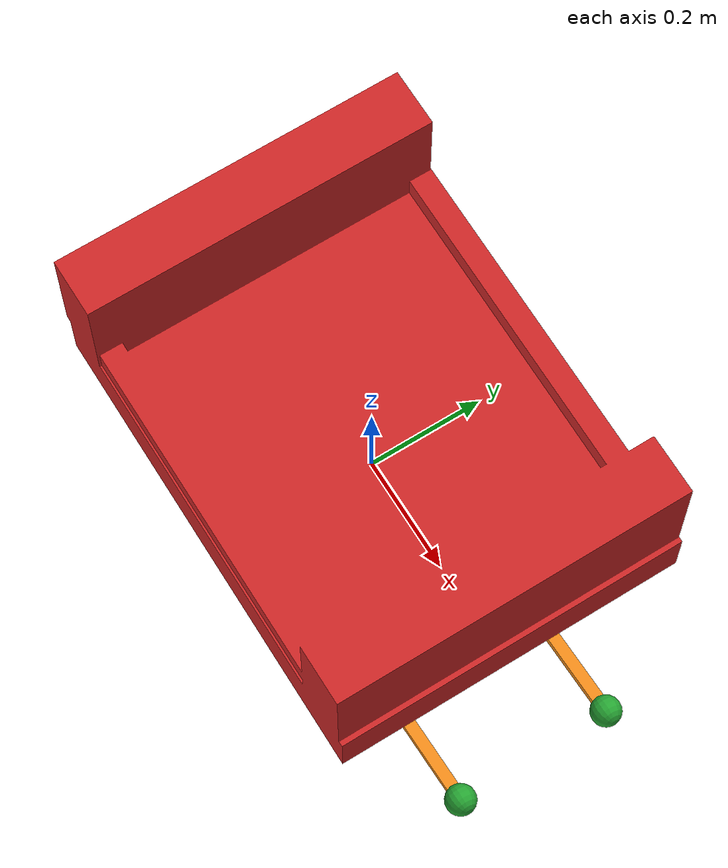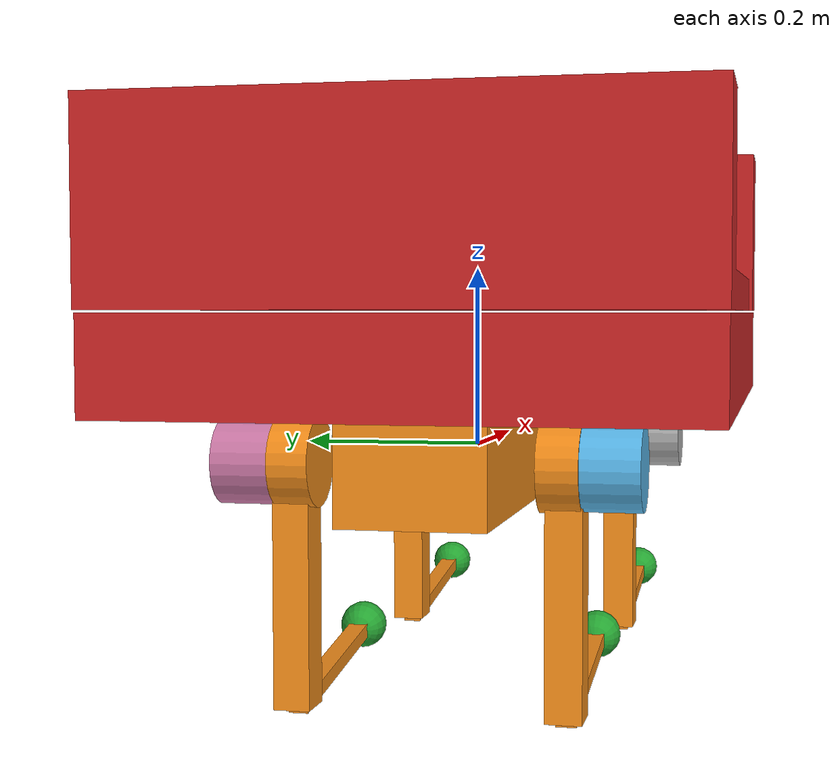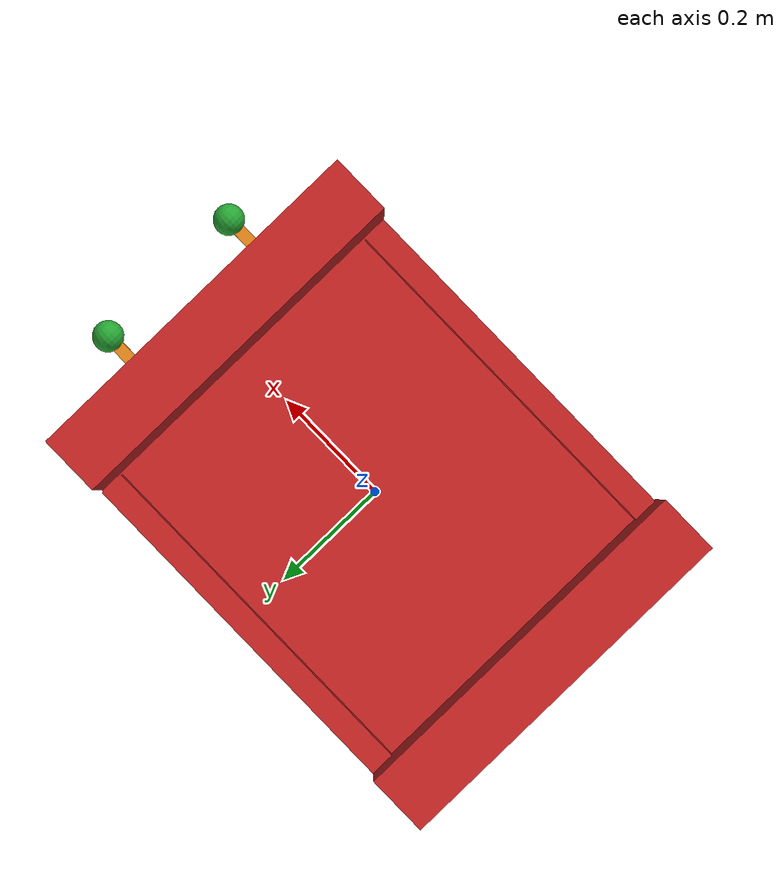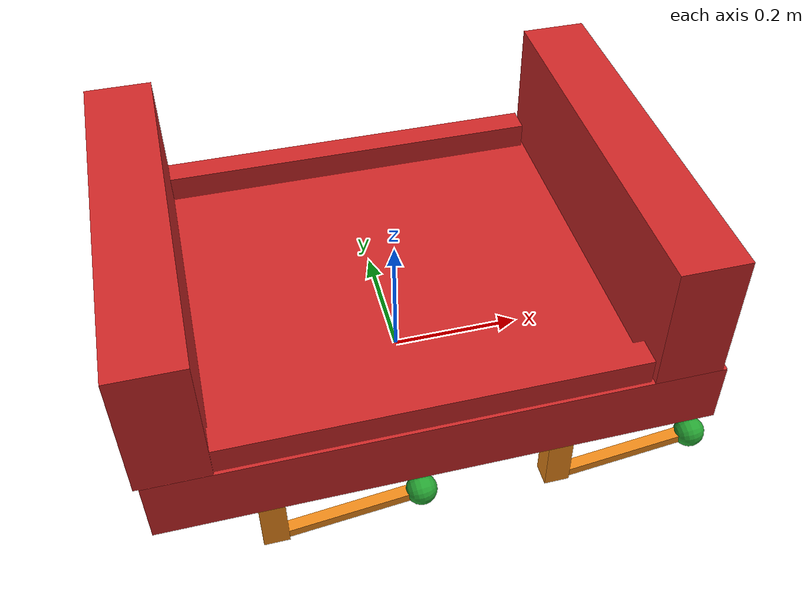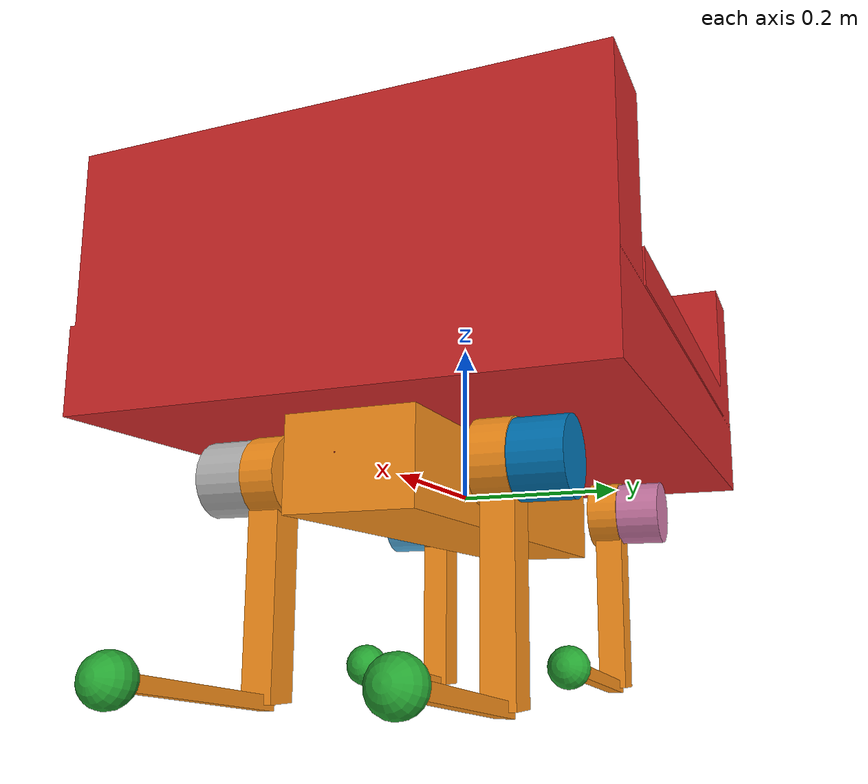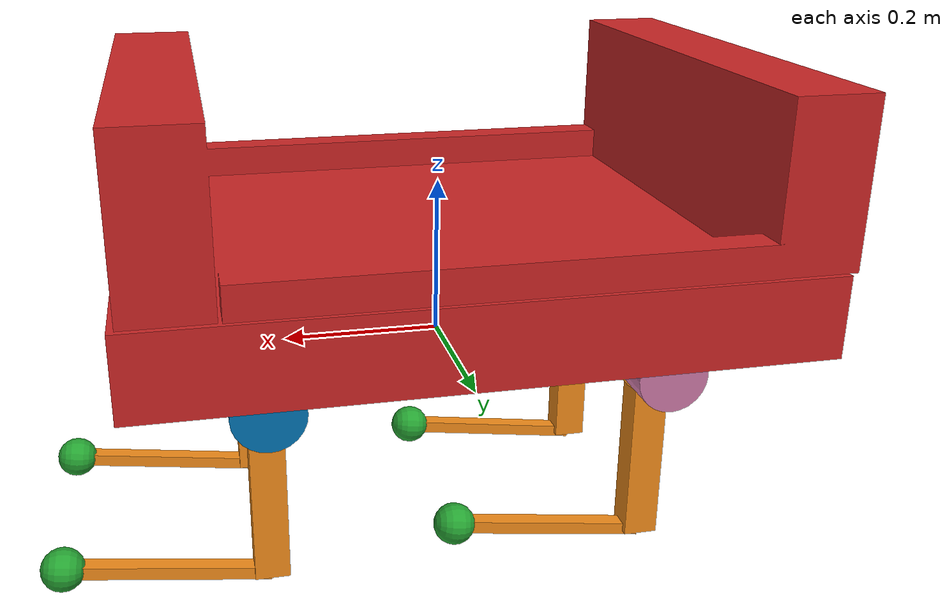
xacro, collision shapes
<?xml version="1.0"?>

<robot name="aliengo_description" xmlns:xacro="http://www.ros.org/wiki/xacro">

    <xacro:include filename="$(find aliengo_description)/xacro/const.xacro"/>
    <xacro:include filename="$(find aliengo_description)/xacro/materials.xacro"/>
    <xacro:include filename="$(find aliengo_description)/xacro/leg.xacro"/>
<!--GAREN ADDS START -->
    <xacro:include filename="$(find aliengo_gazebo)/launch/gazebo.xacro"/>
<!--GAREN ADDS END-->
    <!-- Rollover Protection mode will add an additional stick on the top, use "True" or "False" to switch it. -->
    <xacro:property name="rolloverProtection" value="False"/>

    <!-- Debug mode will hung up the robot, use "True" or "False" to switch it. -->

    <link name="base">
        <visual>
            <origin rpy="0 0 0" xyz="0 0 0"/>
            <geometry>
                <box size="0.001 0.001 0.001"/>
            </geometry>
        </visual>
    </link>

    <joint name="floating_base" type="fixed">
        <origin rpy="0 0 0" xyz="0 0 0"/>
        <parent link="base"/>
        <child link="trunk"/>
    </joint>

    <link name="trunk">
        <visual>
            <origin rpy="0 0 0" xyz="0 0 0"/>
            <geometry>
                <mesh filename="package://aliengo_description/meshes/trunk.dae" scale="1 1 1"/>
            </geometry>
            <material name="orange"/>
        </visual>
        <collision>
            <origin rpy="0 0 0" xyz="0 0 0"/>
            <geometry>
                <box size="${trunk_length} ${trunk_width} ${trunk_height}"/>
            </geometry>
        </collision>
        <inertial>
            <origin rpy="0 0 0" xyz="${trunk_com_x} ${trunk_com_y} ${trunk_com_z}"/>
            <mass value="${trunk_mass}"/>
            <inertia
                ixx="${trunk_ixx}" ixy="${trunk_ixy}" ixz="${trunk_ixz}"
                iyy="${trunk_iyy}" iyz="${trunk_iyz}"
                izz="${trunk_izz}"/>
        </inertial>
    </link>

    <xacro:if value="${(rolloverProtection == 'True')}">
        <joint name="stick_joint" type="fixed">
            <parent link="trunk"/>
            <child link="stick_link"/>
            <origin rpy="0 0 0" xyz="${0.18} 0 ${stick_length/2.0+0.08}"/>
        </joint>

        <link name="stick_link">
            <visual>
                <geometry>
                    <cylinder length="${stick_length}" radius="${stick_radius}"/>
                </geometry>
                <origin rpy="0 0 0" xyz="0 0 0"/>
                <material name="white"/>
            </visual>
            <collision>
                <geometry>
                    <cylinder length="${stick_length}" radius="${stick_radius}"/>
                </geometry>
                <origin rpy="0 0 0" xyz="0 0 0"/>
            </collision>
            <inertial>
                <mass value="${stick_mass}"/>
                <inertia
                    ixx="${stick_mass / 2.0 * (stick_radius*stick_radius)}" ixy="0.0" ixz="0.0"
                    iyy="${stick_mass / 12.0 * (3*stick_radius*stick_radius + stick_length*stick_length)}" iyz="0.0"
                    izz="${stick_mass / 12.0 * (3*stick_radius*stick_radius + stick_length*stick_length)}"/>
            </inertial>
        </link>
    </xacro:if>

    <joint name="imu_joint" type="fixed">
        <parent link="trunk"/>
        <child link="imu_link"/>
        <origin rpy="0 0 0" xyz="0 0 0"/>
    </joint>

    <link name="imu_link">
        <inertial>
            <mass value="0.001"/>
            <origin rpy="0 0 0" xyz="0 0 0"/>
            <inertia ixx="0.0001" ixy="0" ixz="0" iyy="0.000001" iyz="0" izz="0.0001"/>
        </inertial>
        <visual>
            <origin rpy="0 0 0" xyz="0 0 0"/>
            <geometry>
                <box size="0.001 0.001 0.001"/>
            </geometry>
            <material name="red"/>
        </visual>
        <collision>
            <origin rpy="0 0 0" xyz="0 0 0"/>
            <geometry>
                <box size=".001 .001 .001"/>
            </geometry>
        </collision>
    </link>

    <joint name="camera_joint" type="fixed">
        <parent link="trunk"/>
        <child link="camera_link"/>
        <origin rpy="0 0 0" xyz="0.35 0 0"/>
    </joint>

    <link name="camera_link">
        <inertial>
            <mass value="0.001"/>
            <origin rpy="0 0 0" xyz="0 0 0"/>
            <inertia ixx="0.0001" ixy="0" ixz="0" iyy="0.000001" iyz="0" izz="0.0001"/>
        </inertial>
        <visual>
            <origin rpy="0 0 0" xyz="0 0 0"/>
            <geometry>
                <box size="0.001 0.001 0.001"/>
            </geometry>
            <material name="red"/>
        </visual>
        <collision>
            <origin rpy="0 0 0" xyz="0 0 0"/>
            <geometry>
                <box size=".001 .001 .001"/>
            </geometry>
        </collision>
    </link>

    <joint name="laser_joint" type="fixed">
        <parent link="trunk"/>
        <child link="laser_link"/>
        <origin rpy="0 0 0" xyz="0.2 0 0.1"/>
    </joint>

    <link name="laser_link">
        <inertial>
            <mass value="0.001"/>
            <origin rpy="0 0 0" xyz="0 0 0"/>
            <inertia ixx="0.0001" ixy="0" ixz="0" iyy="0.000001" iyz="0" izz="0.0001"/>
        </inertial>
        <visual>
            <origin rpy="0 0 0" xyz="0 0 0"/>
            <geometry>
                <box size="0.001 0.001 0.001"/>
            </geometry>
            <material name="red"/>
        </visual>
        <collision>
            <origin rpy="0 0 0" xyz="0 0 0"/>
            <geometry>
                <box size=".001 .001 .001"/>
            </geometry>
        </collision>
    </link>

   <joint name="aliengo_belt_joint" type="fixed">
        <parent link="trunk"/>
        <child link="aliengo_belt_link"/>
        <origin rpy="0 0 0" xyz="0 0 0.1"/>
    </joint>

     <link name="aliengo_belt_link">
        <inertial>
            <mass value="0.01"/>
            <origin rpy="0 0 0" xyz="0 0 0"/>
            <inertia ixx="0.0001" ixy="0" ixz="0" iyy="0.0001" iyz="0" izz="0.0001"/>
        </inertial>
        <visual>
            <origin rpy="0 0 0" xyz="0 0 0"/>
            <geometry>
                       <mesh filename="package://aliengo_description/xacro/aliengo_deck.stl" scale="1 1 1"/>
            </geometry>
            <material name="red"/>
        </visual>
        <collision>
            <origin rpy="0 0 0" xyz="0 0 0"/>
            <geometry>
                <mesh filename="package://aliengo_description/xacro/aliengo_deck.stl" scale="1 1 1"/>
            </geometry>
        </collision>
    </link>

<!--GAREN ADDS START -->

    <xacro:leg name="FR" mirror="-1" mirror_dae="False" front_hind="1" front_hind_dae="True">
        <origin rpy="0 0 0" xyz="${leg_offset_x} ${-leg_offset_y} 0"/>
    </xacro:leg>

    <xacro:leg name="FL" mirror="1" mirror_dae="True" front_hind="1" front_hind_dae="True">
        <origin rpy="0 0 0" xyz="${leg_offset_x} ${leg_offset_y} 0"/>
    </xacro:leg>

    <xacro:leg name="RR" mirror="-1" mirror_dae="False" front_hind="1" front_hind_dae="True">
        <origin rpy="0 0 0" xyz="${-leg_offset_x} ${-leg_offset_y} 0"/>
    </xacro:leg>

    <xacro:leg name="RL" mirror="1" mirror_dae="True" front_hind="1" front_hind_dae="True">
        <origin rpy="0 0 0" xyz="${-leg_offset_x} ${leg_offset_y} 0"/>
    </xacro:leg>
<!--GAREN ADDS END -->
</robot>

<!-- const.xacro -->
<robot xmlns:xacro="http://www.ros.org/wiki/xacro">

    <!-- Constants for robot dimensions -->
    <xacro:property name="PI" value="3.1415926535897931"/>
    <xacro:property name="stick_mass" value="0.00001"/>

    <!-- simplified collision value -->
    <xacro:property name="trunk_width" value="0.150"/>
    <xacro:property name="trunk_length" value="0.647"/>
    <xacro:property name="trunk_height" value="0.112"/>
    <xacro:property name="hip_radius" value="0.046"/>
    <xacro:property name="hip_length" value="0.0418"/>
    <xacro:property name="thigh_shoulder_radius" value="0.044"/>
    <xacro:property name="thigh_shoulder_length" value="0.08"/>
    <xacro:property name="thigh_width" value="0.0374"/>
    <xacro:property name="thigh_height" value="0.043"/>
    <xacro:property name="calf_width" value="0.0208"/>
    <xacro:property name="calf_height" value="0.016"/>
    <xacro:property name="foot_radius" value="0.0265"/>
    <xacro:property name="stick_radius" value="0.01"/>
    <xacro:property name="stick_length" value="0.2"/>

    <!-- kinematic value -->
    <xacro:property name="thigh_offset" value="0.0868"/>
    <xacro:property name="thigh_length" value="0.25"/>
    <xacro:property name="calf_length" value="0.25"/>

    <!-- leg offset from trunk center value -->
    <xacro:property name="leg_offset_x" value="0.2407"/>
    <xacro:property name="leg_offset_y" value="0.051"/>
    <xacro:property name="trunk_offset_z" value="0.01675"/>
    <xacro:property name="hip_offset" value="0.083"/>

    <!-- offset of link and rotor locations (left front) -->
    <xacro:property name="hip_offset_x" value="0.2407"/>
    <xacro:property name="hip_offset_y" value="0.051"/>
    <xacro:property name="hip_offset_z" value="0.0"/>
    <xacro:property name="hip_rotor_offset_x" value="0.139985"/>
    <xacro:property name="hip_rotor_offset_y" value="0.051"/>
    <xacro:property name="hip_rotor_offset_z" value="0.0"/>

    <xacro:property name="thigh_offset_x" value="0"/>
    <xacro:property name="thigh_offset_y" value="0.0868"/>
    <xacro:property name="thigh_offset_z" value="0.0"/>
    <xacro:property name="thigh_rotor_offset_x" value="0.0"/>
    <xacro:property name="thigh_rotor_offset_y" value="0.0298"/>
    <xacro:property name="thigh_rotor_offset_z" value="0.0"/>

    <xacro:property name="calf_offset_x" value="0.0"/>
    <xacro:property name="calf_offset_y" value="0.0"/>
    <xacro:property name="calf_offset_z" value="-0.25"/>
    <xacro:property name="calf_rotor_offset_x" value="0.0"/>
    <xacro:property name="calf_rotor_offset_y" value="-0.0997"/>
    <xacro:property name="calf_rotor_offset_z" value="0.0"/>

    <!-- joint limits -->
    <xacro:property name="damping" value="0"/>
    <xacro:property name="friction" value="0"/>
    <xacro:property name="hip_position_max" value="${70*PI/180.0}"/>
    <xacro:property name="hip_position_min" value="${-70*PI/180.0}"/>
    <xacro:property name="hip_velocity_max" value="20"/>
    <xacro:property name="hip_torque_max" value="35.278"/>
    <xacro:property name="thigh_position_max" value="${240*PI/180.0}"/>
    <xacro:property name="thigh_position_min" value="${-120*PI/180.0}"/>
    <xacro:property name="thigh_velocity_max" value="20"/>
    <xacro:property name="thigh_torque_max" value="35.278"/>
    <xacro:property name="calf_position_max" value="${-37*PI/180.0}"/>
    <xacro:property name="calf_position_min" value="${-159*PI/180.0}"/>
    <xacro:property name="calf_velocity_max" value="15.89"/>
    <xacro:property name="calf_torque_max" value="44.4"/>

    <!-- dynamics inertial value        total 23.0kg -->
    <!-- trunk -->
    <xacro:property name="trunk_mass" value="11.644"/>
    <xacro:property name="trunk_com_x" value="0.008811"/>
    <xacro:property name="trunk_com_y" value="0.003839"/>
    <xacro:property name="trunk_com_z" value="0.000273"/>
    <xacro:property name="trunk_ixx" value="0.051944892"/>
    <xacro:property name="trunk_ixy" value="0.001703617"/>
    <xacro:property name="trunk_ixz" value="0.000235941"/>
    <xacro:property name="trunk_iyy" value="0.24693924"/>
    <xacro:property name="trunk_iyz" value="0.000119783"/>
    <xacro:property name="trunk_izz" value="0.270948307"/>

    <!-- hip (left front) -->
    <xacro:property name="hip_mass" value="1.993"/>
    <xacro:property name="hip_com_x" value="-0.022191"/>
    <xacro:property name="hip_com_y" value="0.015144"/>
    <xacro:property name="hip_com_z" value="-0.000015"/>
    <xacro:property name="hip_ixx" value="0.002446735"/>
    <xacro:property name="hip_ixy" value="-0.00059805"/>
    <xacro:property name="hip_ixz" value="0.000001945"/>
    <xacro:property name="hip_iyy" value="0.003925876"/>
    <xacro:property name="hip_iyz" value="0.000001284"/>
    <xacro:property name="hip_izz" value="0.004148145"/>

    <xacro:property name="hip_rotor_mass" value="0.146"/>
    <xacro:property name="hip_rotor_com_x" value="0.0"/>
    <xacro:property name="hip_rotor_com_y" value="0.0"/>
    <xacro:property name="hip_rotor_com_z" value="0.0"/>
    <xacro:property name="hip_rotor_ixx" value="0.000138702"/>
    <xacro:property name="hip_rotor_ixy" value="0.0"/>
    <xacro:property name="hip_rotor_ixz" value="0.0"/>
    <xacro:property name="hip_rotor_iyy" value="0.000083352"/>
    <xacro:property name="hip_rotor_iyz" value="0.0"/>
    <xacro:property name="hip_rotor_izz" value="0.000083352"/>

    <!-- thigh -->
    <xacro:property name="thigh_mass" value="0.639"/>
    <xacro:property name="thigh_com_x" value="-0.005607"/>
    <xacro:property name="thigh_com_y" value="-0.003877"/>
    <xacro:property name="thigh_com_z" value="-0.048199"/>
    <xacro:property name="thigh_ixx" value="0.004173855"/>
    <xacro:property name="thigh_ixy" value="0.000010284"/>
    <xacro:property name="thigh_ixz" value="-0.000318874"/>
    <xacro:property name="thigh_iyy" value="0.004343802"/>
    <xacro:property name="thigh_iyz" value="0.000109233"/>
    <xacro:property name="thigh_izz" value="0.000340136"/>

    <xacro:property name="thigh_rotor_mass" value="0.146"/>
    <xacro:property name="thigh_rotor_com_x" value="0.0"/>
    <xacro:property name="thigh_rotor_com_y" value="0.0"/>
    <xacro:property name="thigh_rotor_com_z" value="0.0"/>
    <xacro:property name="thigh_rotor_ixx" value="0.000083352"/>
    <xacro:property name="thigh_rotor_ixy" value="0.0"/>
    <xacro:property name="thigh_rotor_ixz" value="0.0"/>
    <xacro:property name="thigh_rotor_iyy" value="0.000138702"/>
    <xacro:property name="thigh_rotor_iyz" value="0.0"/>
    <xacro:property name="thigh_rotor_izz" value="0.000083352"/>

    <!-- calf -->
    <xacro:property name="calf_mass" value="0.207"/>
    <xacro:property name="calf_com_x" value="0.002781"/>
    <xacro:property name="calf_com_y" value="0.000063"/>
    <xacro:property name="calf_com_z" value="-0.142518"/>
    <xacro:property name="calf_ixx" value="0.002129279"/>
    <xacro:property name="calf_ixy" value="0.000000039"/>
    <xacro:property name="calf_ixz" value="0.000005757"/>
    <xacro:property name="calf_iyy" value="0.002141463"/>
    <xacro:property name="calf_iyz" value="-0.000000516"/>
    <xacro:property name="calf_izz" value="0.000037583"/>

    <xacro:property name="calf_rotor_mass" value="0.132"/>
    <xacro:property name="calf_rotor_com_x" value="0.0"/>
    <xacro:property name="calf_rotor_com_y" value="0.0"/>
    <xacro:property name="calf_rotor_com_z" value="0.0"/>
    <xacro:property name="calf_rotor_ixx" value="0.000145463"/>
    <xacro:property name="calf_rotor_ixy" value="0.0"/>
    <xacro:property name="calf_rotor_ixz" value="0.0"/>
    <xacro:property name="calf_rotor_iyy" value="0.000133031"/>
    <xacro:property name="calf_rotor_iyz" value="0.0"/>
    <xacro:property name="calf_rotor_izz" value="0.000145463"/>

    <!-- foot -->
    <xacro:property name="foot_mass" value="0.06"/>

</robot>

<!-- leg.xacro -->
<robot xmlns:xacro="http://www.ros.org/wiki/xacro">

    <xacro:include filename="$(find aliengo_description)/xacro/transmission.xacro"/>

    <xacro:macro name="leg" params="name mirror mirror_dae front_hind front_hind_dae *origin">

        <joint name="${name}_hip_joint" type="revolute">
            <xacro:insert_block name="origin"/>
            <parent link="trunk"/>
            <child link="${name}_hip"/>
            <axis xyz="1 0 0"/>
            <dynamics damping="${damping}" friction="${friction}"/>
            <xacro:if value="${(mirror_dae == True)}">
                <limit effort="${hip_torque_max}" velocity="${hip_velocity_max}" lower="${hip_position_min}" upper="${hip_position_max}"/>
            </xacro:if>
            <xacro:if value="${(mirror_dae == False)}">
                <limit effort="${hip_torque_max}" velocity="${hip_velocity_max}" lower="${-hip_position_max}" upper="${-hip_position_min}"/>
            </xacro:if>
        </joint>

        <link name="${name}_hip">
            <visual>
                <xacro:if value="${(mirror_dae == True) and (front_hind_dae == True)}">
                    <origin rpy="0 0 0" xyz="0 0 0"/>
                </xacro:if>
                <xacro:if value="${(mirror_dae == False) and (front_hind_dae == True)}">
                    <origin rpy="${PI} 0 0" xyz="0 0 0"/>
                </xacro:if>
                <xacro:if value="${(mirror_dae == True) and (front_hind_dae == False)}">
                    <origin rpy="0 ${PI} 0" xyz="0 0 0"/>
                </xacro:if>
                <xacro:if value="${(mirror_dae == False) and (front_hind_dae == False)}">
                    <origin rpy="${PI} ${PI} 0" xyz="0 0 0"/>
                </xacro:if>
                <geometry>
                    <mesh filename="package://aliengo_description/meshes/hip.dae" scale="1 1 1"/>
                </geometry>
                <material name="orange"/>
            </visual>
            <collision>
                <origin rpy="${PI/2.0} 0 0" xyz="0 ${hip_offset*mirror} 0"/>
                <geometry>
                    <cylinder length="${hip_length}" radius="${hip_radius}"/>
                </geometry>
            </collision>
            <inertial>
                <origin rpy="0 0 0" xyz="${hip_com_x*front_hind} ${hip_com_y*mirror} ${hip_com_z}"/>
                <mass value="${hip_mass}"/>
                <inertia
                    ixx="${hip_ixx}" ixy="${hip_ixy*mirror*front_hind}" ixz="${hip_ixz*front_hind}"
                    iyy="${hip_iyy}" iyz="${hip_iyz*mirror}"
                    izz="${hip_izz}"/>
            </inertial>
        </link>
     <!--GAREN ADDS START -->
      <joint name="${name}_hip_fixed" type="fixed">
            <origin rpy="0 0 0" xyz="0 ${(thigh_shoulder_length/2.0+hip_offset)*mirror} 0"/>
            <parent link="${name}_hip"/>
            <child link="${name}_thigh_shoulder"/>
        </joint>

        <!-- this link is only for collision -->
         <link name="${name}_thigh_shoulder">
            <collision>
                <origin rpy="${PI/2.0} 0 0" xyz="0 0 0"/>
                <geometry>
                    <cylinder length="${thigh_shoulder_length}" radius="${thigh_shoulder_radius}"/>
                </geometry>
            </collision>
        </link>
             <!--GAREN ADDS END -->
        <joint name="${name}_thigh_joint" type="continuous">
            <origin rpy="0 0 0" xyz="0 ${thigh_offset*mirror} 0"/>
            <parent link="${name}_hip"/>
            <child link="${name}_thigh"/>
            <axis xyz="0 1 0"/>
            <dynamics damping="${damping}" friction="${friction}"/>
            <limit effort="${thigh_torque_max}" velocity="${thigh_velocity_max}"/>
        </joint>

        <link name="${name}_thigh">
            <visual>
                <origin rpy="0 0 0" xyz="0 0 0"/>
                <geometry>
                    <xacro:if value="${mirror_dae == True}">
                        <mesh filename="package://aliengo_description/meshes/thigh.dae" scale="1 1 1"/>
                    </xacro:if>
                    <xacro:if value="${mirror_dae == False}">
                        <mesh filename="package://aliengo_description/meshes/thigh_mirror.dae" scale="1 1 1"/>
                    </xacro:if>
                </geometry>
                <material name="orange"/>
            </visual>
            <collision>
                <origin rpy="0 ${PI/2.0} 0" xyz="0 0 ${-thigh_length/2.0}"/>
                <geometry>
                    <box size="${thigh_length} ${thigh_width} ${thigh_height}"/>
                </geometry>
            </collision>
            <inertial>
                <origin rpy="0 0 0" xyz="${thigh_com_x} ${thigh_com_y*mirror} ${thigh_com_z}"/>
                <mass value="${thigh_mass}"/>
                <inertia
                    ixx="${thigh_ixx}" ixy="${thigh_ixy*mirror}" ixz="${thigh_ixz}"
                    iyy="${thigh_iyy}" iyz="${thigh_iyz*mirror}"
                    izz="${thigh_izz}"/>
            </inertial>
        </link>

        <joint name="${name}_calf_joint" type="revolute">
            <origin rpy="0 0 0" xyz="0 0 ${-thigh_length}"/>
            <parent link="${name}_thigh"/>
            <child link="${name}_calf"/>
            <axis xyz="0 1 0"/>
            <dynamics damping="${damping}" friction="${friction}"/>
            <limit effort="${calf_torque_max}" velocity="${calf_velocity_max}" lower="${calf_position_min}" upper="${calf_position_max}"/>
        </joint>

        <link name="${name}_calf">
            <visual>
                <origin rpy="0 0 0" xyz="0 0 0"/>
                <geometry>
                    <mesh filename="package://aliengo_description/meshes/calf.dae" scale="1 1 1"/>
                </geometry>
                <material name="orange"/>
            </visual>
            <collision>
                <origin rpy="0 ${PI/2.0} 0" xyz="0 0 ${-calf_length/2.0}"/>
                <geometry>
                    <box size="${calf_length} ${calf_width} ${calf_height}"/>
                </geometry>
            </collision>
            <inertial>
                <origin rpy="0 0 0" xyz="${calf_com_x} ${calf_com_y} ${calf_com_z}"/>
                <mass value="${calf_mass}"/>
                <inertia
                    ixx="${calf_ixx}" ixy="${calf_ixy}" ixz="${calf_ixz}"
                    iyy="${calf_iyy}" iyz="${calf_iyz}"
                    izz="${calf_izz}"/>
            </inertial>
        </link>

        <joint name="${name}_foot_fixed" type="fixed">
            <origin rpy="0 0 0" xyz="0 0 ${-(calf_length)}"/>
            <parent link="${name}_calf"/>
            <child link="${name}_foot"/>
        </joint>

        <link name="${name}_foot">
            <visual>
                <origin rpy="0 0 0" xyz="0 0 0"/>
                <geometry>
                    <sphere radius="${foot_radius-0.01}"/>
                </geometry>
                <material name="green"/>
            </visual>
            <collision>
                <origin rpy="0 0 0" xyz="0 0 0"/>
                <geometry>
                    <sphere radius="${foot_radius}"/>
                </geometry>
            </collision>
            <inertial>
                <mass value="${foot_mass}"/>
                <inertia
                    ixx="${(2*foot_mass)/5.0*(foot_radius*foot_radius)}" ixy="0.0" ixz="0.0"
                    iyy="${(2*foot_mass)/5.0*(foot_radius*foot_radius)}" iyz="0.0"
                    izz="${(2*foot_mass)/5.0*(foot_radius*foot_radius)}"/>
            </inertial>
        </link>

        <xacro:leg_transmission name="${name}"/>
    </xacro:macro>
</robot>
